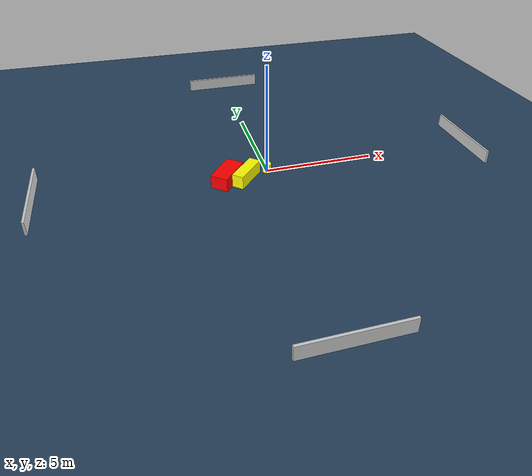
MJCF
<?xml version="1.0" ?>
<mujoco model="generated_environment">
  <option timestep="0.01" integrator="RK4" cone="elliptic"/>
  <default>
    <geom density="1"/>
  </default>
  <asset>
    <texture builtin="gradient" height="3072" name="skybox" rgb1="0.3 0.5 0.7" rgb2="0 0 0" type="skybox" width="512"/>
    <texture builtin="checker" height="300" name="groundplane" rgb1="0.2 0.3 0.4" rgb2="0.1 0.2 0.3" type="2d" width="300"/>
    <material name="groundplane" reflectance="0.2" texrepeat="5 5" texture="groundplane"/>
  </asset>
  <worldbody>
    <light dir="0 0 -1" directional="true" pos="0 0 1.5"/>
    <geom condim="3" friction="0.5 0.005 0.001" material="groundplane" name="floor" pos="0 0 0" size="0 0 0.05" type="plane"/>
    <body name="walls">
      <geom name="wall_1" condim="4" pos="-10.0 0.0 0.3" rgba="0.800000011920929 0.800000011920929 0.800000011920929 1.0" size="0.05 2.0 0.3" type="box"/>
      <geom name="wall_2" condim="4" pos="10.0 0.0 0.3" rgba="0.800000011920929 0.800000011920929 0.800000011920929 1.0" size="0.05 2.0 0.3" type="box"/>
      <geom name="wall_3" condim="4" pos="0.0 -10.0 0.3" rgba="0.800000011920929 0.800000011920929 0.800000011920929 1.0" size="2.0 0.05 0.3" type="box"/>
      <geom name="wall_4" condim="4" pos="0.0 10.0 0.3" rgba="0.800000011920929 0.800000011920929 0.800000011920929 1.0" size="2.0 0.05 0.3" type="box"/>
    </body>
    <body name="robot">
      <joint name="joint_x" type="slide" pos="0 0 0" axis="1 0 0"/>
      <joint name="joint_y" type="slide" pos="0 0 0" axis="0 1 0"/>
      <geom name="robot" type="cylinder" pos="0.0 0.0 0.2" size="0.2 0.2 0.0" mass="5.0" friction="1.0 0.005 0.0001" condim="4" rgba="1.0 1.0 0.0 1.0"/>
    </body>
    <body name="obstacle_1_movable">
      <geom name="obstacle_1_movable" condim="4" pos="-1.036487819399605 -0.3922858662224597 0.3" euler="0 0 47.73465961083999" friction="0.0 0.005 0.001" rgba="1.0 1.0 0.0 1.0" size="0.7905919602422737 0.25882800173199655 0.3" type="box" mass="0.1"/>
      <joint type="free"/>
    </body>
    <body name="obstacle_2_static">
      <geom name="obstacle_2_static" condim="4" pos="-1.873019739917688 -0.2988439354746163 0.3" euler="0 0 51.06650990734408" friction="0.0 0.005 0.001" rgba="1.0 0.0 0.0 1.0" size="0.7849692113777009 0.3957590272204403 0.3" type="box"/>
    </body>
  </worldbody>
  <actuator>
    <motor name="actuator_x" joint="joint_x" gear="1" ctrlrange="-1 1"/>
    <motor name="actuator_y" joint="joint_y" gear="1" ctrlrange="-1 1"/>
  </actuator>
</mujoco>
